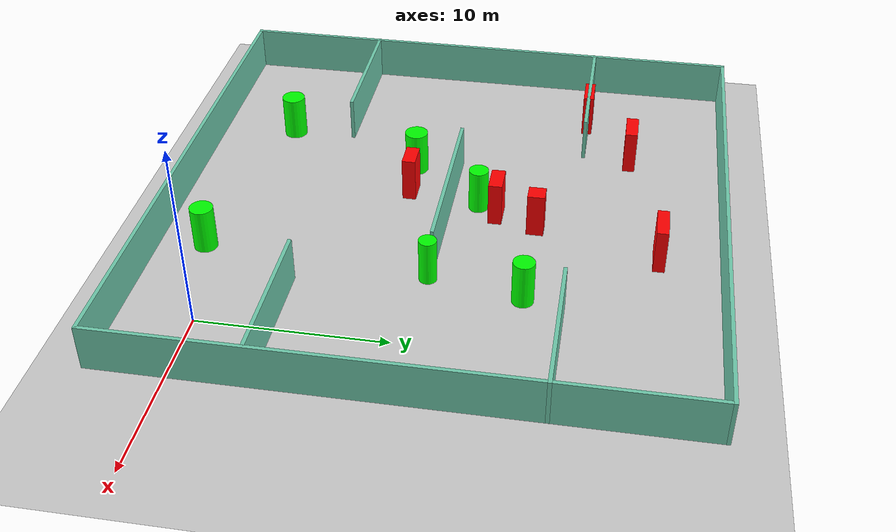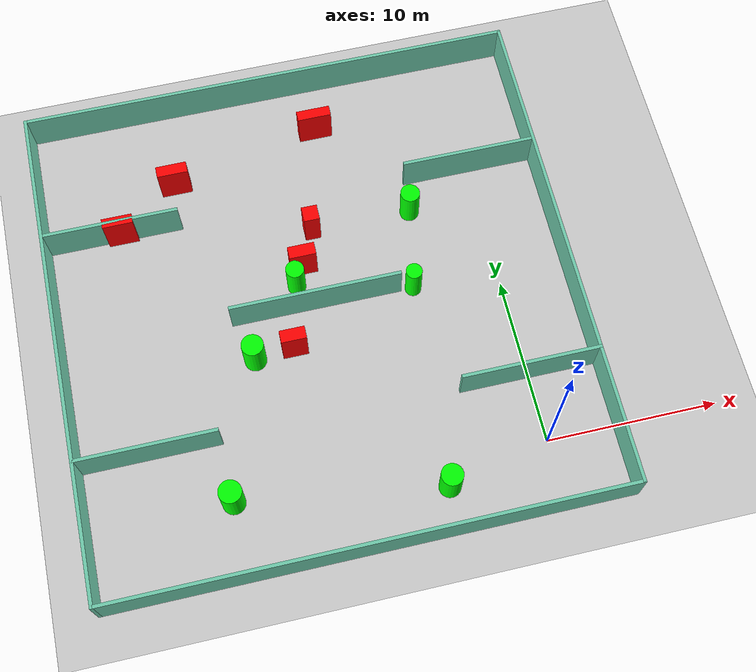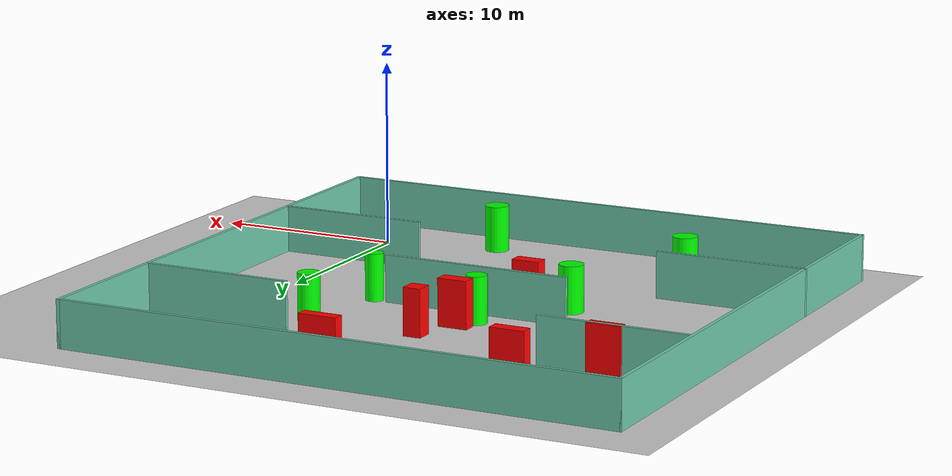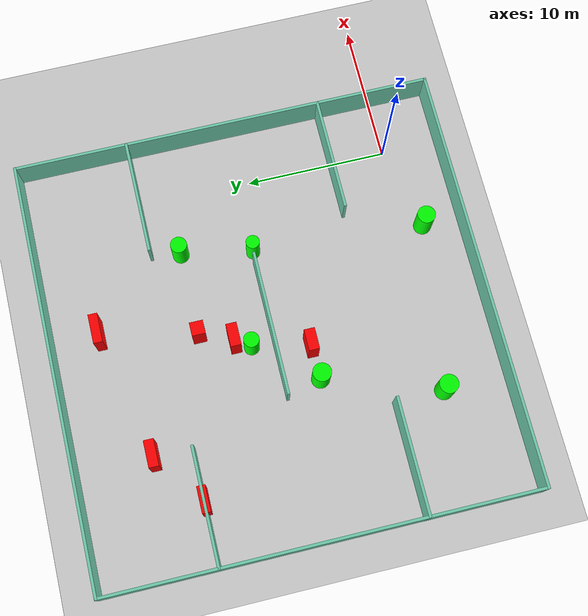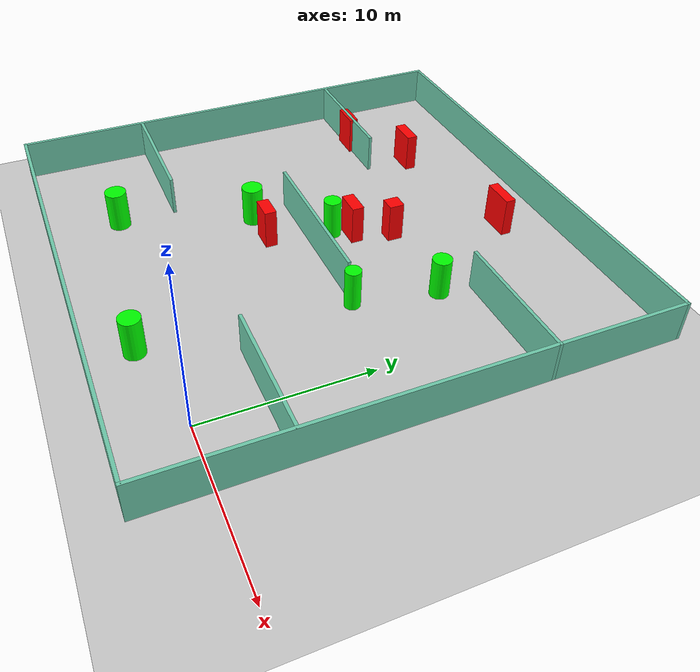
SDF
<sdf version="1.7">
 <world name="default">
  <light name="sun" type="directional">
   <pose>0 0 10 0 -0 0</pose>
   <diffuse>0.8 0.8 0.8 1</diffuse>
   <specular>0.2 0.2 0.2 1</specular>
   <attenuation>
    <range>1000</range>
    <constant>0.9</constant>
    <linear>0.01</linear>
    <quadratic>0.001</quadratic>
   </attenuation>
   <direction>-0.5 0.1 -0.9</direction>
   <spot><inner_angle>0</inner_angle><outer_angle>0</outer_angle><falloff>0</falloff></spot>
  </light>
  <model name="ground_plane">
   <static>1</static>
   <link name="link">
    <collision name="collision">
     <geometry><plane><normal>0 0 1</normal><size>100 100</size></plane></geometry>
     <surface>
      <contact><collide_bitmask>65535</collide_bitmask></contact>
      <friction><ode><mu>100</mu><mu2>50</mu2></ode></friction>
     </surface>
    </collision>
    <visual name="visual">
     <cast_shadows>0</cast_shadows>
     <geometry><plane><normal>0 0 1</normal><size>100 100</size></plane></geometry>
     <material>
      <script><uri>file://media/materials/scripts/gazebo.material</uri><name>Gazebo/Grey</name></script>
     </material>
    </visual>
   </link>
  </model>
  <gravity>0 0 -9.8</gravity>
  <magnetic_field>6e-06 2.3e-05 -4.2e-05</magnetic_field>
  <atmosphere type="adiabatic"/>
  <physics type="ode">
   <max_step_size>0.001</max_step_size>
   <real_time_factor>1</real_time_factor>
   <real_time_update_rate>1000</real_time_update_rate>
  </physics>
  <scene><ambient>0.4 0.4 0.4 1</ambient><background>0.7 0.7 0.7 1</background><shadows>1</shadows></scene>
  <spherical_coordinates>
   <surface_model>EARTH_WGS84</surface_model>
   <latitude_deg>0</latitude_deg>
   <longitude_deg>0</longitude_deg>
   <elevation>0</elevation>
   <heading_deg>0</heading_deg>
  </spherical_coordinates>
  <model name="my_base_walls">
   <link name="Wall_10">
    <collision name="Wall_10_Collision">
     <geometry><box><size>8.2 0.2 2.5</size></box></geometry>
     <pose>0 0 1.25 0 -0 0</pose>
    </collision>
    <visual name="Wall_10_Visual">
     <pose>0 0 1.25 0 -0 0</pose>
     <geometry><box><size>8.2 0.2 2.5</size></box></geometry>
     <material>
      <script><uri>file://media/materials/scripts/gazebo.material</uri><name>Gazebo/Grey</name></script>
      <ambient>0.435294 0.796078 0.67451 1</ambient>
     </material>
     <meta><layer>0</layer></meta>
    </visual>
    <pose>-11 -7 0 0 -0 0</pose>
   </link>
   <link name="Wall_12">
    <collision name="Wall_12_Collision">
     <geometry><box><size>8.2 0.2 2.5</size></box></geometry>
     <pose>0 0 1.25 0 -0 0</pose>
    </collision>
    <visual name="Wall_12_Visual">
     <pose>0 0 1.25 0 -0 0</pose>
     <geometry><box><size>8.2 0.2 2.5</size></box></geometry>
     <material>
      <script><uri>file://media/materials/scripts/gazebo.material</uri><name>Gazebo/Grey</name></script>
      <ambient>0.435294 0.796078 0.67451 1</ambient>
     </material>
     <meta><layer>0</layer></meta>
    </visual>
    <pose>-11 7 0 0 -0 0</pose>
   </link>
   <link name="Wall_14">
    <collision name="Wall_14_Collision">
     <geometry><box><size>8.2 0.2 2.5</size></box></geometry>
     <pose>0 0 1.25 0 -0 0</pose>
    </collision>
    <visual name="Wall_14_Visual">
     <pose>0 0 1.25 0 -0 0</pose>
     <geometry><box><size>8.2 0.2 2.5</size></box></geometry>
     <material>
      <script><uri>file://media/materials/scripts/gazebo.material</uri><name>Gazebo/Grey</name></script>
      <ambient>0.435294 0.796078 0.67451 1</ambient>
     </material>
     <meta><layer>0</layer></meta>
    </visual>
    <pose>11 7 0 0 -0 3.14159</pose>
   </link>
   <link name="Wall_16">
    <collision name="Wall_16_Collision">
     <geometry><box><size>10.2 0.2 2.5</size></box></geometry>
     <pose>0 0 1.25 0 -0 0</pose>
    </collision>
    <visual name="Wall_16_Visual">
     <pose>0 0 1.25 0 -0 0</pose>
     <geometry><box><size>10.2 0.2 2.5</size></box></geometry>
     <material>
      <script><uri>file://media/materials/scripts/gazebo.material</uri><name>Gazebo/Grey</name></script>
      <ambient>0.435294 0.796078 0.67451 1</ambient>
     </material>
     <meta><layer>0</layer></meta>
    </visual>
    <pose>0 0 0 0 -0 3.14159</pose>
   </link>
   <link name="Wall_2">
    <collision name="Wall_2_Collision">
     <geometry><box><size>30.2 0.2 2.5</size></box></geometry>
     <pose>0 0 1.25 0 -0 0</pose>
    </collision>
    <visual name="Wall_2_Visual">
     <pose>0 0 1.25 0 -0 0</pose>
     <geometry><box><size>30.2 0.2 2.5</size></box></geometry>
     <material>
      <script><uri>file://media/materials/scripts/gazebo.material</uri><name>Gazebo/Grey</name></script>
      <ambient>0.435294 0.796078 0.67451 1</ambient>
     </material>
     <meta><layer>0</layer></meta>
    </visual>
    <pose>0 -15 0 0 -0 3.14159</pose>
   </link>
   <link name="Wall_3">
    <collision name="Wall_3_Collision">
     <geometry><box><size>30.2 0.2 2.5</size></box></geometry>
     <pose>0 0 1.25 0 -0 0</pose>
    </collision>
    <visual name="Wall_3_Visual">
     <pose>0 0 1.25 0 -0 0</pose>
     <geometry><box><size>30.2 0.2 2.5</size></box></geometry>
     <material>
      <script><uri>file://media/materials/scripts/gazebo.material</uri><name>Gazebo/Grey</name></script>
      <ambient>0.435294 0.796078 0.67451 1</ambient>
     </material>
     <meta><layer>0</layer></meta>
    </visual>
    <pose>-15 0 0 0 -0 1.5708</pose>
   </link>
   <link name="Wall_4">
    <collision name="Wall_4_Collision">
     <geometry><box><size>30.2 0.2 2.5</size></box></geometry>
     <pose>0 0 1.25 0 -0 0</pose>
    </collision>
    <visual name="Wall_4_Visual">
     <pose>0 0 1.25 0 -0 0</pose>
     <geometry><box><size>30.2 0.2 2.5</size></box></geometry>
     <material>
      <script><uri>file://media/materials/scripts/gazebo.material</uri><name>Gazebo/Grey</name></script>
      <ambient>0.435294 0.796078 0.67451 1</ambient>
     </material>
     <meta><layer>0</layer></meta>
    </visual>
    <pose>0 15 0 0 -0 0</pose>
   </link>
   <link name="Wall_6">
    <collision name="Wall_6_Collision">
     <geometry><box><size>30.2 0.2 2.5</size></box></geometry>
     <pose>0 0 1.25 0 -0 0</pose>
    </collision>
    <visual name="Wall_6_Visual">
     <pose>0 0 1.25 0 -0 0</pose>
     <geometry><box><size>30.2 0.2 2.5</size></box></geometry>
     <material>
      <script><uri>file://media/materials/scripts/gazebo.material</uri><name>Gazebo/Grey</name></script>
      <ambient>0.435294 0.796078 0.67451 1</ambient>
     </material>
     <meta><layer>0</layer></meta>
    </visual>
    <pose>15 0 0 0 -0 1.5708</pose>
   </link>
   <link name="Wall_8">
    <collision name="Wall_8_Collision">
     <geometry><box><size>8.2 0.2 2.5</size></box></geometry>
     <pose>0 0 1.25 0 -0 0</pose>
    </collision>
    <visual name="Wall_8_Visual">
     <pose>0 0 1.25 0 -0 0</pose>
     <geometry><box><size>8.2 0.2 2.5</size></box></geometry>
     <material>
      <script><uri>file://media/materials/scripts/gazebo.material</uri><name>Gazebo/Grey</name></script>
      <ambient>0.435294 0.796078 0.67451 1</ambient>
     </material>
     <meta><layer>0</layer></meta>
    </visual>
    <pose>11 -7 0 0 -0 3.14159</pose>
   </link>
   <static>1</static>
   <pose>-11 11 0 0 -0 0</pose>
  </model>
  <model name="cylinder1">
   <static>1</static>
   <link name="link">
    <inertial>
     <mass>1</mass>
     <inertia><ixx>0.5</ixx><ixy>0</ixy><ixz>0</ixz><iyy>0.5</iyy><iyz>0</iyz><izz>1</izz></inertia>
    </inertial>
    <collision name="collision">
     <geometry><cylinder><radius>0.662208042152365</radius><length>2.5</length></cylinder></geometry>
    </collision>
    <visual name="visual">
     <geometry><cylinder><radius>0.662208042152365</radius><length>2.5</length></cylinder></geometry>
     <material>
      <ambient>0 1 0 1</ambient>
      <diffuse>0 1 0 1</diffuse>
      <specular>0.1 0.1 0.1 1</specular>
      <emissive>0 0 0 0</emissive>
     </material>
    </visual>
   </link>
   <pose>-17.91180955708258 0.4139881381571806 1.25 0 0 0</pose>
  </model>
  <model name="cylinder2">
   <static>1</static>
   <link name="link">
    <inertial>
     <mass>1</mass>
     <inertia><ixx>0.5</ixx><ixy>0</ixy><ixz>0</ixz><iyy>0.5</iyy><iyz>0</iyz><izz>1</izz></inertia>
    </inertial>
    <collision name="collision">
     <geometry><cylinder><radius>0.6372452242993341</radius><length>2.5</length></cylinder></geometry>
    </collision>
    <visual name="visual">
     <geometry><cylinder><radius>0.6372452242993341</radius><length>2.5</length></cylinder></geometry>
     <material>
      <ambient>0 1 0 1</ambient>
      <diffuse>0 1 0 1</diffuse>
      <specular>0.1 0.1 0.1 1</specular>
      <emissive>0 0 0 0</emissive>
     </material>
    </visual>
   </link>
   <pose>-6.020600016071352 -1.349671164397964 1.25 0 0 0</pose>
  </model>
  <model name="cylinder3">
   <static>1</static>
   <link name="link">
    <inertial>
     <mass>1</mass>
     <inertia><ixx>0.5</ixx><ixy>0</ixy><ixz>0</ixz><iyy>0.5</iyy><iyz>0</iyz><izz>1</izz></inertia>
    </inertial>
    <collision name="collision">
     <geometry><cylinder><radius>0.5779819302982003</radius><length>2.5</length></cylinder></geometry>
    </collision>
    <visual name="visual">
     <geometry><cylinder><radius>0.5779819302982003</radius><length>2.5</length></cylinder></geometry>
     <material>
      <ambient>0 1 0 1</ambient>
      <diffuse>0 1 0 1</diffuse>
      <specular>0.1 0.1 0.1 1</specular>
      <emissive>0 0 0 0</emissive>
     </material>
    </visual>
   </link>
   <pose>-4.189345700890453 15.943293436373263 1.25 0 0 0</pose>
  </model>
  <model name="cylinder4">
   <static>1</static>
   <link name="link">
    <inertial>
     <mass>1</mass>
     <inertia><ixx>0.5</ixx><ixy>0</ixy><ixz>0</ixz><iyy>0.5</iyy><iyz>0</iyz><izz>1</izz></inertia>
    </inertial>
    <collision name="collision">
     <geometry><cylinder><radius>0.6492220367668436</radius><length>2.5</length></cylinder></geometry>
    </collision>
    <visual name="visual">
     <geometry><cylinder><radius>0.6492220367668436</radius><length>2.5</length></cylinder></geometry>
     <material>
      <ambient>0 1 0 1</ambient>
      <diffuse>0 1 0 1</diffuse>
      <specular>0.1 0.1 0.1 1</specular>
      <emissive>0 0 0 0</emissive>
     </material>
    </visual>
   </link>
   <pose>-15.173841486373009 8.470970774264257 1.25 0 0 0</pose>
  </model>
  <model name="cylinder5">
   <static>1</static>
   <link name="link">
    <inertial>
     <mass>1</mass>
     <inertia><ixx>0.5</ixx><ixy>0</ixy><ixz>0</ixz><iyy>0.5</iyy><iyz>0</iyz><izz>1</izz></inertia>
    </inertial>
    <collision name="collision">
     <geometry><cylinder><radius>0.5443443583542291</radius><length>2.5</length></cylinder></geometry>
    </collision>
    <visual name="visual">
     <geometry><cylinder><radius>0.5443443583542291</radius><length>2.5</length></cylinder></geometry>
     <material>
      <ambient>0 1 0 1</ambient>
      <diffuse>0 1 0 1</diffuse>
      <specular>0.1 0.1 0.1 1</specular>
      <emissive>0 0 0 0</emissive>
     </material>
    </visual>
   </link>
   <pose>-11.892666427343249 12.572075560683786 1.25 0 0 0</pose>
  </model>
  <model name="cylinder6">
   <static>1</static>
   <link name="link">
    <inertial>
     <mass>1</mass>
     <inertia><ixx>0.5</ixx><ixy>0</ixy><ixz>0</ixz><iyy>0.5</iyy><iyz>0</iyz><izz>1</izz></inertia>
    </inertial>
    <collision name="collision">
     <geometry><cylinder><radius>0.48167251642403597</radius><length>2.5</length></cylinder></geometry>
    </collision>
    <visual name="visual">
     <geometry><cylinder><radius>0.48167251642403597</radius><length>2.5</length></cylinder></geometry>
     <material>
      <ambient>0 1 0 1</ambient>
      <diffuse>0 1 0 1</diffuse>
      <specular>0.1 0.1 0.1 1</specular>
      <emissive>0 0 0 0</emissive>
     </material>
    </visual>
   </link>
   <pose>-5.164841348408906 10.907914519548573 1.25 0 0 0</pose>
  </model>
  <model name="box1">
   <static>1</static>
   <link name="link">
    <inertial>
     <mass>1</mass>
     <inertia><ixx>0.083</ixx><ixy>0</ixy><ixz>0</ixz><iyy>0.083</iyy><iyz>0</iyz><izz>0.083</izz></inertia>
    </inertial>
    <collision name="collision">
     <geometry><box><size>0.9461593040988149 0.9396993112650828 2.5</size></box></geometry>
    </collision>
    <visual name="visual">
     <geometry><box><size>0.9461593040988149 0.9396993112650828 2.5</size></box></geometry>
     <material>
      <ambient>1 0 0 1</ambient>
      <diffuse>1 0 0 1</diffuse>
      <specular>0.1 0.1 0.1 1</specular>
      <emissive>0 0 0 0</emissive>
     </material>
    </visual>
    <sensor name="my_contact" type="contact">
     <contact><collision>box_collision</collision><topic>__default_topic__</topic></contact>
    </sensor>
   </link>
   <pose>-10.268891644678721 15.947929645654746 1.25 0 0 0</pose>
  </model>
  <model name="box2">
   <static>1</static>
   <link name="link">
    <inertial>
     <mass>1</mass>
     <inertia><ixx>0.083</ixx><ixy>0</ixy><ixz>0</ixz><iyy>0.083</iyy><iyz>0</iyz><izz>0.083</izz></inertia>
    </inertial>
    <collision name="collision">
     <geometry><box><size>1.59888428494097 0.7518462973563432 2.5</size></box></geometry>
    </collision>
    <visual name="visual">
     <geometry><box><size>1.59888428494097 0.7518462973563432 2.5</size></box></geometry>
     <material>
      <ambient>1 0 0 1</ambient>
      <diffuse>1 0 0 1</diffuse>
      <specular>0.1 0.1 0.1 1</specular>
      <emissive>0 0 0 0</emissive>
     </material>
    </visual>
    <sensor name="my_contact" type="contact">
     <contact><collision>box_collision</collision><topic>__default_topic__</topic></contact>
    </sensor>
   </link>
   <pose>-11.260175728214445 13.662426727328636 1.25 0 0 0</pose>
  </model>
  <model name="box3">
   <static>1</static>
   <link name="link">
    <inertial>
     <mass>1</mass>
     <inertia><ixx>0.083</ixx><ixy>0</ixy><ixz>0</ixz><iyy>0.083</iyy><iyz>0</iyz><izz>0.083</izz></inertia>
    </inertial>
    <collision name="collision">
     <geometry><box><size>2.04171350364544 0.6330989522802779 2.5</size></box></geometry>
    </collision>
    <visual name="visual">
     <geometry><box><size>2.04171350364544 0.6330989522802779 2.5</size></box></geometry>
     <material>
      <ambient>1 0 0 1</ambient>
      <diffuse>1 0 0 1</diffuse>
      <specular>0.1 0.1 0.1 1</specular>
      <emissive>0 0 0 0</emissive>
     </material>
    </visual>
    <sensor name="my_contact" type="contact">
     <contact><collision>box_collision</collision><topic>__default_topic__</topic></contact>
    </sensor>
   </link>
   <pose>-8.671777868757019 22.676678014295792 1.25 0 0 0</pose>
  </model>
  <model name="box4">
   <static>1</static>
   <link name="link">
    <inertial>
     <mass>1</mass>
     <inertia><ixx>0.083</ixx><ixy>0</ixy><ixz>0</ixz><iyy>0.083</iyy><iyz>0</iyz><izz>0.083</izz></inertia>
    </inertial>
    <collision name="collision">
     <geometry><box><size>1.4918205824989421 0.7463843010719758 2.5</size></box></geometry>
    </collision>
    <visual name="visual">
     <geometry><box><size>1.4918205824989421 0.7463843010719758 2.5</size></box></geometry>
     <material>
      <ambient>1 0 0 1</ambient>
      <diffuse>1 0 0 1</diffuse>
      <specular>0.1 0.1 0.1 1</specular>
      <emissive>0 0 0 0</emissive>
     </material>
    </visual>
    <sensor name="my_contact" type="contact">
     <contact><collision>box_collision</collision><topic>__default_topic__</topic></contact>
    </sensor>
   </link>
   <pose>-12.81087135128901 8.588326087246102 1.25 0 0 0</pose>
  </model>
  <model name="box5">
   <static>1</static>
   <link name="link">
    <inertial>
     <mass>1</mass>
     <inertia><ixx>0.083</ixx><ixy>0</ixy><ixz>0</ixz><iyy>0.083</iyy><iyz>0</iyz><izz>0.083</izz></inertia>
    </inertial>
    <collision name="collision">
     <geometry><box><size>1.845537496132938 0.6913774232268837 2.5</size></box></geometry>
    </collision>
    <visual name="visual">
     <geometry><box><size>1.845537496132938 0.6913774232268837 2.5</size></box></geometry>
     <material>
      <ambient>1 0 0 1</ambient>
      <diffuse>1 0 0 1</diffuse>
      <specular>0.1 0.1 0.1 1</specular>
      <emissive>0 0 0 0</emissive>
     </material>
    </visual>
    <sensor name="my_contact" type="contact">
     <contact><collision>box_collision</collision><topic>__default_topic__</topic></contact>
    </sensor>
   </link>
   <pose>-17.810867590219257 20.713759014175498 1.25 0 0 0</pose>
  </model>
  <model name="box6">
   <static>1</static>
   <link name="link">
    <inertial>
     <mass>1</mass>
     <inertia><ixx>0.083</ixx><ixy>0</ixy><ixz>0</ixz><iyy>0.083</iyy><iyz>0</iyz><izz>0.083</izz></inertia>
    </inertial>
    <collision name="collision">
     <geometry><box><size>1.8002265142080427 0.5836607290783934 2.5</size></box></geometry>
    </collision>
    <visual name="visual">
     <geometry><box><size>1.8002265142080427 0.5836607290783934 2.5</size></box></geometry>
     <material>
      <ambient>1 0 0 1</ambient>
      <diffuse>1 0 0 1</diffuse>
      <specular>0.1 0.1 0.1 1</specular>
      <emissive>0 0 0 0</emissive>
     </material>
    </visual>
    <sensor name="my_contact" type="contact">
     <contact><collision>box_collision</collision><topic>__default_topic__</topic></contact>
    </sensor>
   </link>
   <pose>-21.507959207355526 17.997461659834617 1.25 0 0 0</pose>
  </model>
 </world>
</sdf>
